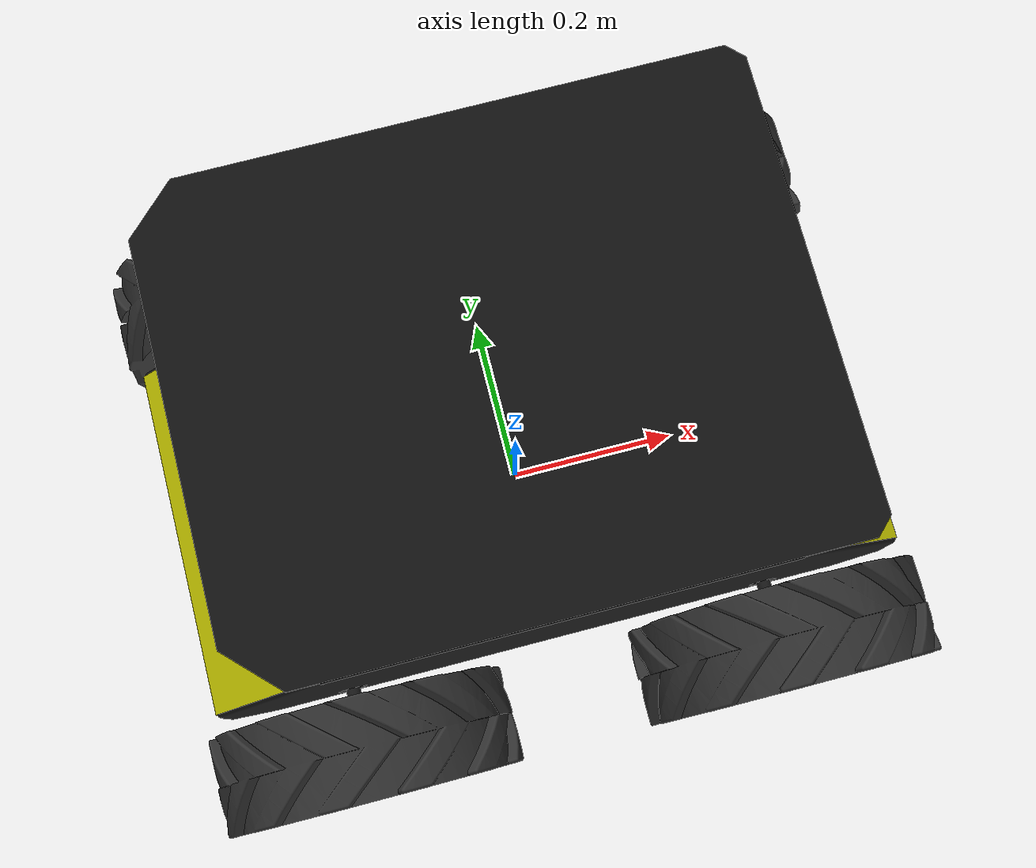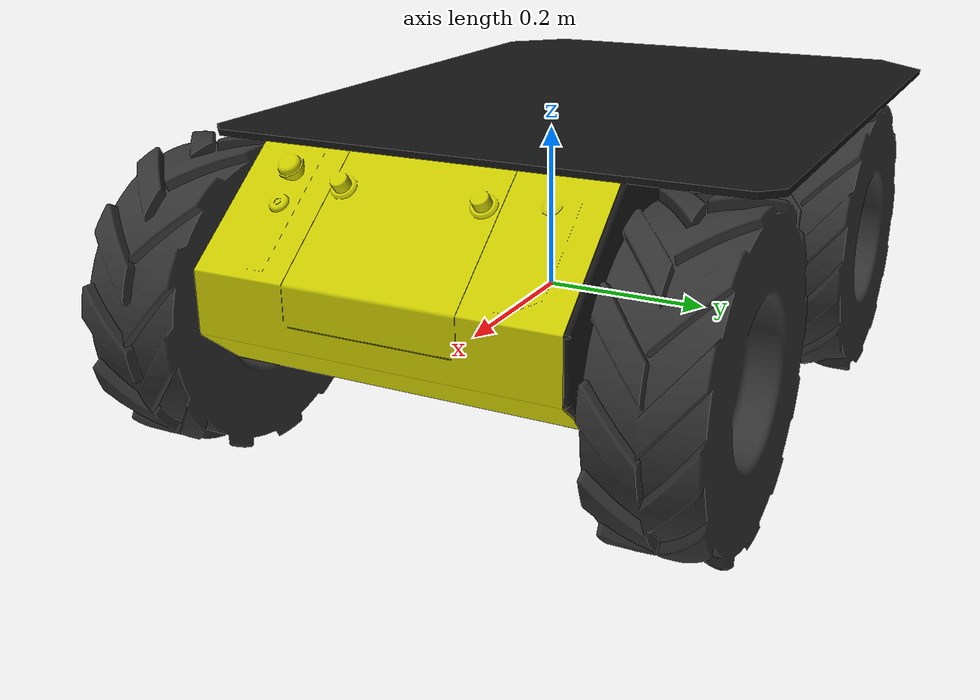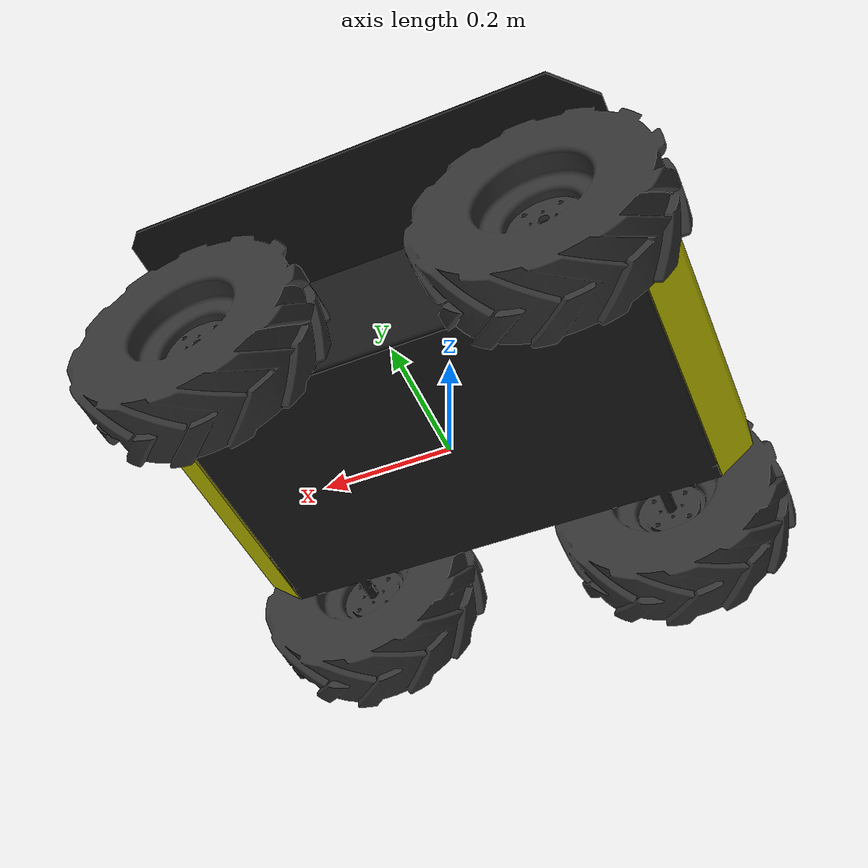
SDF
<?xml version='1.0' encoding='utf-8'?>
<sdf version="1.6">
  <model name="costar_husky_sensor_config_1">
    <link name="base_link">
      <pose frame="">0 0 0 0 0 1.5708</pose>
      <inertial>
        <pose frame="">0 0 0.062329 0 -0 1.5708</pose>
        <mass>46.064</mass>
        <inertia>
          <ixx>0.615397</ixx>
          <ixy>-0.0240585</ixy>
          <ixz>-0.120749</ixz>
          <iyy>1.75388</iyy>
          <iyz>-0.0028322</iyz>
          <izz>2.03641</izz>
        </inertia>
      </inertial>
      <collision name="base_link_collision">
        <pose frame="">0 0 0.12 0 0 1.5708</pose>
        <geometry>
          <box>
            <size>0.9874 0.5709 0.05</size>
          </box>
        </geometry>
      </collision>
      <collision name="base_link_collision_bottom">
        <pose frame="">0 0 0.046 0 0 1.5708</pose>
        <geometry>
          <box>
            <size>0.80 0.5709 0.095</size>
          </box>
        </geometry>
      </collision>
      <collision name="base_link_collision_1">
        <pose frame="">0 0 0.185625 0 -0 1.5708</pose>
        <geometry>
          <box>
            <size>0.78992 0.5709 0.12375</size>
          </box>
        </geometry>
      </collision>
      <collision name="base_link_fixed_joint_lump__top_plate_link_collision_3">
        <pose frame="">0.0812 0 0.245 0 -0 1.5708</pose>
        <geometry>
          <mesh>
            <scale>1 1 1</scale>
            <uri>meshes/top_plate.dae</uri>
          </mesh>
        </geometry>
      </collision>
      <collision name="base_link_fixed_joint_lump__top_plate_link_collision_4">
        <pose frame="">0.0812 0 0.245 0 -0 1.5708</pose>
        <geometry>
          <box>
            <size>0.32 0.41 0.09</size>
          </box>
        </geometry>
      </collision>
      <visual name="base_link_visual">
        <pose frame="">0 0 0 0 -0 1.5708</pose>
        <geometry>
          <mesh>
            <scale>1 1 1</scale>
            <uri>meshes/base_link.dae</uri>
          </mesh>
        </geometry>
      </visual>
      <visual name="base_link_fixed_joint_lump__top_chassis_link_visual_5">
        <pose frame="">0 0 0 0 -0 1.5708</pose>
        <geometry>
          <mesh>
            <scale>1 1 1</scale>
            <uri>meshes/top_chassis.dae</uri>
          </mesh>
        </geometry>
      </visual>
      <visual name="base_link_fixed_joint_lump__top_plate_link_visual_6">
        <pose frame="">0.0812 0 0.245 0 -0 1.5708</pose>
        <geometry>
          <mesh>
            <scale>1 1 1</scale>
            <uri>meshes/top_plate.dae</uri>
          </mesh>
        </geometry>
      </visual>

      <velocity_decay />
      <self_collide>0</self_collide>
      <enable_wind>0</enable_wind>
      <kinematic>0</kinematic>
      <gravity>1</gravity>
      <velocity_decay />
      <gravity>1</gravity>
      <velocity_decay />

      <sensor type="camera" name="right">
        <update_rate>30</update_rate>
        <always_on>true</always_on>
        <ignition_frame_id>/world/field/model/costar_husky_sensor_config_1/link/base_link</ignition_frame_id>
        <pose frame="">0.0212 0 0.950 0 0 0</pose>
        <topic>/world/field/model/costar_husky_sensor_config_1/link/base_link/stereo_camera/right/image_raw</topic>
        <camera name="right">
          <horizontal_fov>1.3962634</horizontal_fov>
          <image>
              <width>1080</width>
              <height>1920</height>
              <format>R8G8B8</format>
          </image>
          <clip>
              <near>0.02</near>
              <far>300</far>
          </clip>
        </camera>
      </sensor>

      <sensor type="camera" name="left">
        <topic>/world/field/model/costar_husky_sensor_config_1/link/base_link/stereo_camera/left/image_raw</topic>
        <update_rate>30</update_rate>
        <always_on>true</always_on>
        <ignition_frame_id>/world/field/model/costar_husky_sensor_config_1/link/base_link</ignition_frame_id>
        <pose frame="">0.0212 0.12 0.950 0 0 0</pose>
        <camera name="left">
          <horizontal_fov>1.3962634</horizontal_fov>
          <image>
              <width>1080</width>
              <height>1920</height>
              <format>R8G8B8</format>
          </image>
          <clip>
              <near>0.02</near>
              <far>300</far>
          </clip>
        </camera>
      </sensor>

      <sensor name="realsense_d435" type="rgbd_camera">
        <update_rate>30</update_rate>
        <pose frame="">0.0012 0 0.950 0 -0.3 0</pose>
        <camera name="camera">
          <horizontal_fov>1.3962634</horizontal_fov>
          <lens>
            <intrinsics>
              <!-- fx = fy = width / ( 2 * tan (hfov / 2 ) ) -->
              <fx>554.25469</fx>
              <fy>554.25469</fy>
              <!-- cx = ( width + 1 ) / 2 -->
              <cx>320.5</cx>
              <!-- cy = ( height + 1 ) / 2 -->
              <cy>240.5</cy>
              <s>0</s>
            </intrinsics>
          </lens>
          <distortion>
            <k1>0.0</k1>
            <k2>0.0</k2>
            <k3>0.0</k3>
            <p1>0.0</p1>
            <p2>0.0</p2>
            <center>0.5 0.5</center>
          </distortion>
          <image>
            <width>1080</width>
            <height>1920</height>
            <format>R8G8B8</format>
          </image>
          <clip>
            <near>0.01</near>
            <far>300</far>
          </clip>
          <depth_camera>
            <clip>
              <near>0.1</near>
              <far>10</far>
            </clip>
          </depth_camera>
          <noise>
            <type>gaussian</type>
            <mean>0</mean>
            <stddev>0.007</stddev>
          </noise>
        </camera>
      </sensor>

      <velocity_decay />

      <!-- GPS -->
      <sensor name="gps" type="navsat">
        <spherical_coordinates>-34.67093619854793 -56.34362977503078 0</spherical_coordinates>
      </sensor>

      <sensor name="imu_sensor" type="imu">
        <always_on>1</always_on>
        <update_rate>50</update_rate>
        <imu>
          <enable_orientation>0</enable_orientation>
          <angular_velocity>
            <x>
              <noise type="gaussian">
                <mean>0</mean>
                <stddev>0.009</stddev>
                <bias_mean>0.00075</bias_mean>
                <bias_stddev>0.005</bias_stddev>
                <dynamic_bias_stddev>0.00002</dynamic_bias_stddev>
                <dynamic_bias_correlation_time>400.0</dynamic_bias_correlation_time>
                <precision>0.00025</precision>
              </noise>
            </x>
            <y>
              <noise type="gaussian">
                <mean>0</mean>
                <stddev>0.009</stddev>
                <bias_mean>0.00075</bias_mean>
                <bias_stddev>0.005</bias_stddev>
                <dynamic_bias_stddev>0.00002</dynamic_bias_stddev>
                <dynamic_bias_correlation_time>400.0</dynamic_bias_correlation_time>
                <precision>0.00025</precision>
              </noise>
            </y>
            <z>
              <noise type="gaussian">
                <mean>0</mean>
                <stddev>0.009</stddev>
                <bias_mean>0.00075</bias_mean>
                <bias_stddev>0.005</bias_stddev>
                <dynamic_bias_stddev>0.00002</dynamic_bias_stddev>
                <dynamic_bias_correlation_time>400.0</dynamic_bias_correlation_time>
                <precision>0.00025</precision>
              </noise>
            </z>
          </angular_velocity>
          <linear_acceleration>
            <x>
              <noise type="gaussian">
                <mean>0</mean>
                <stddev>0.021</stddev>
                <bias_mean>0.05</bias_mean>
                <bias_stddev>0.0075</bias_stddev>
                <dynamic_bias_stddev>0.000375</dynamic_bias_stddev>
                <dynamic_bias_correlation_time>175.0</dynamic_bias_correlation_time>
                <precision>0.005</precision>
              </noise>
            </x>
            <y>
              <noise type="gaussian">
                <mean>0</mean>
                <stddev>0.021</stddev>
                <bias_mean>0.05</bias_mean>
                <bias_stddev>0.0075</bias_stddev>
                <dynamic_bias_stddev>0.000375</dynamic_bias_stddev>
                <dynamic_bias_correlation_time>175.0</dynamic_bias_correlation_time>
                <precision>0.005</precision>
              </noise>
            </y>
            <z>
              <noise type="gaussian">
                <mean>0</mean>
                <stddev>0.021</stddev>
                <bias_mean>0.05</bias_mean>
                <bias_stddev>0.0075</bias_stddev>
                <dynamic_bias_stddev>0.000375</dynamic_bias_stddev>
                <dynamic_bias_correlation_time>175.0</dynamic_bias_correlation_time>
                <precision>0.005</precision>
              </noise>
            </z>
          </linear_acceleration>
        </imu>
      </sensor>
    </link>
    <link name="front_left_wheel_link">
      <pose frame="">0.256 0.2854 0.03282 0 -0 1.5708</pose>
      <inertial>
        <pose frame="">0 0 0 0 -0 1.5708</pose>
        <mass>2.637</mass>
      </inertial>
      <collision name="front_left_wheel_link_collision">
        <pose frame="">0 0 0 1.5707963267948966 -0 1.5708</pose>
        <geometry>
          <cylinder>
            <length>0.1143</length>
            <radius>0.1651</radius>
          </cylinder>
        </geometry>
        <surface>
          <contact>
            <ode>
              <kp>1e+07</kp>
              <kd>1</kd>
            </ode>
          </contact>
          <friction>
            <ode>
              <mu>0.5</mu>
              <mu2>1</mu2>
              <slip1>0.00062</slip1>
              <slip2>0</slip2>
              <fdir1>0 0 1</fdir1>
            </ode>
          </friction>
        </surface>
      </collision>
      <visual name="front_left_wheel_link_visual">
        <pose frame="">0 0 0 0 -0 1.5708</pose>
        <geometry>
          <mesh>
            <scale>1 1 1</scale>
            <uri>meshes/wheel.dae</uri>
          </mesh>
        </geometry>
      </visual>
      <gravity>1</gravity>
      <velocity_decay />
    </link>
    <joint name="front_left_wheel_joint" type="revolute">
      <child>front_left_wheel_link</child>
      <parent>base_link</parent>
      <axis>
        <xyz>0 1 0</xyz>
        <limit>
          <lower>-1e+16</lower>
          <upper>1e+16</upper>
        </limit>
        <dynamics>
          <spring_reference>0</spring_reference>
          <spring_stiffness>0</spring_stiffness>
        </dynamics>
        <use_parent_model_frame>1</use_parent_model_frame>
      </axis>
    </joint>
    <link name="front_right_wheel_link">
      <pose frame="">0.256 -0.2854 0.03282 0 -0 1.5708</pose>
      <inertial>
        <pose frame="">0 0 0 0 -0 1.5708</pose>
        <mass>2.637</mass>
      </inertial>
      <collision name="front_right_wheel_link_collision">
        <pose frame="">0 0 0 1.5707963267948966 -0 1.5708</pose>
        <geometry>
          <cylinder>
            <length>0.1143</length>
            <radius>0.1651</radius>
          </cylinder>
        </geometry>
        <surface>
          <contact>
            <ode>
              <kp>1e+07</kp>
              <kd>1</kd>
            </ode>
          </contact>
          <friction>
            <ode>
              <mu>0.5</mu>
              <mu2>1</mu2>
              <slip1>0.00062</slip1>
              <slip2>0</slip2>
              <fdir1>0 0 1</fdir1>
            </ode>
          </friction>
        </surface>
      </collision>
      <visual name="front_right_wheel_link_visual">
        <pose frame="">0 0 0 0 -0 1.5708</pose>
        <geometry>
          <mesh>
            <scale>1 1 1</scale>
            <uri>meshes/wheel.dae</uri>
          </mesh>
        </geometry>
      </visual>
      <gravity>1</gravity>
      <velocity_decay />
    </link>
    <joint name="front_right_wheel_joint" type="revolute">
      <child>front_right_wheel_link</child>
      <parent>base_link</parent>
      <axis>
        <xyz>0 1 0</xyz>
        <limit>
          <lower>-1e+16</lower>
          <upper>1e+16</upper>
        </limit>
        <dynamics>
          <spring_reference>0</spring_reference>
          <spring_stiffness>0</spring_stiffness>
        </dynamics>
        <use_parent_model_frame>1</use_parent_model_frame>
      </axis>
    </joint>
    <link name="rear_left_wheel_link">
      <pose frame="">-0.256 0.2854 0.03282 0 -0 1.5708</pose>
      <inertial>
        <pose frame="">0 0 0 0 -0 1.5708</pose>
        <mass>2.637</mass>
      </inertial>
      <collision name="rear_left_wheel_link_collision">
        <pose frame="">0 0 0 1.5707963267948966 -0 1.5708</pose>
        <geometry>
          <cylinder>
            <length>0.1143</length>
            <radius>0.1651</radius>
          </cylinder>
        </geometry>
        <surface>
          <contact>
            <ode>
              <kp>1e+07</kp>
              <kd>1</kd>
            </ode>
          </contact>
          <friction>
            <ode>
              <mu>0.5</mu>
              <mu2>1</mu2>
              <slip1>0.00062</slip1>
              <slip2>0</slip2>
              <fdir1>0 0 1</fdir1>
            </ode>
          </friction>
        </surface>
      </collision>
      <visual name="rear_left_wheel_link_visual">
        <pose frame="">0 0 0 0 -0 1.5708</pose>
        <geometry>
          <mesh>
            <scale>1 1 1</scale>
            <uri>meshes/wheel.dae</uri>
          </mesh>
        </geometry>
      </visual>
      <gravity>1</gravity>
      <velocity_decay />
    </link>
    <joint name="rear_left_wheel_joint" type="revolute">
      <child>rear_left_wheel_link</child>
      <parent>base_link</parent>
      <axis>
        <xyz>0 1 0</xyz>
        <limit>
          <lower>-1e+16</lower>
          <upper>1e+16</upper>
        </limit>
        <dynamics>
          <spring_reference>0</spring_reference>
          <spring_stiffness>0</spring_stiffness>
        </dynamics>
        <use_parent_model_frame>1</use_parent_model_frame>
      </axis>
    </joint>
    <link name="rear_right_wheel_link">
      <pose frame="">-0.256 -0.2854 0.03282 0 -0 1.5708</pose>
      <inertial>
        <pose frame="">0 0 0 0 -0 1.5708</pose>
        <mass>2.637</mass>
      </inertial>
      <collision name="rear_right_wheel_link_collision">
        <pose frame="">0 0 0 1.5707963267948966 -0 1.5708</pose>
        <geometry>
          <cylinder>
            <length>0.1143</length>
            <radius>0.1651</radius>
          </cylinder>
        </geometry>
        <surface>
          <contact>
            <ode>
              <kp>1e+07</kp>
              <kd>1</kd>
            </ode>
          </contact>
          <friction>
            <ode>
              <mu>0.5</mu>
              <mu2>1</mu2>
              <slip1>0.00062</slip1>
              <slip2>0</slip2>
              <fdir1>0 0 1</fdir1>
            </ode>
          </friction>
        </surface>
      </collision>
      <visual name="rear_right_wheel_link_visual">
        <pose frame="">0 0 0 0 -0 1.5708</pose>
        <geometry>
          <mesh>
            <scale>1 1 1</scale>
            <uri>meshes/wheel.dae</uri>
          </mesh>
        </geometry>
      </visual>
      <gravity>1</gravity>
      <velocity_decay />
    </link>
    <joint name="rear_right_wheel_joint" type="revolute">
      <child>rear_right_wheel_link</child>
      <parent>base_link</parent>
      <axis>
        <xyz>0 1 0</xyz>
        <limit>
          <lower>-1e+16</lower>
          <upper>1e+16</upper>
        </limit>
        <dynamics>
          <spring_reference>0</spring_reference>
          <spring_stiffness>0</spring_stiffness>
        </dynamics>
        <use_parent_model_frame>1</use_parent_model_frame>
      </axis>
    </joint>
    <static>0</static>
  </model>
</sdf>
